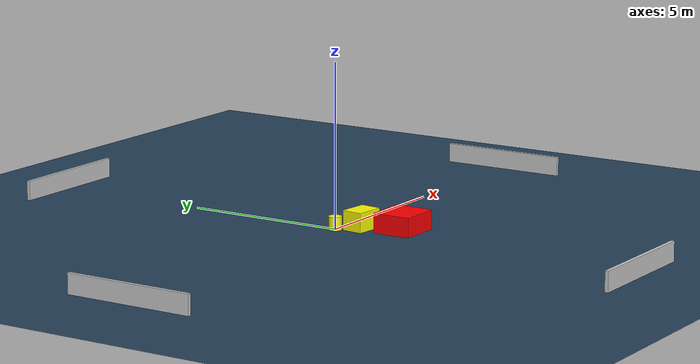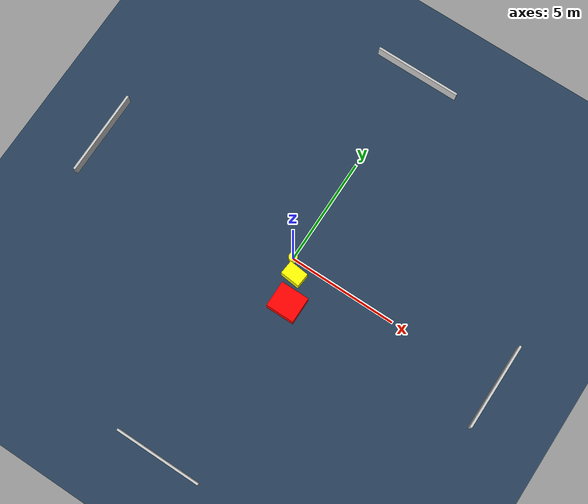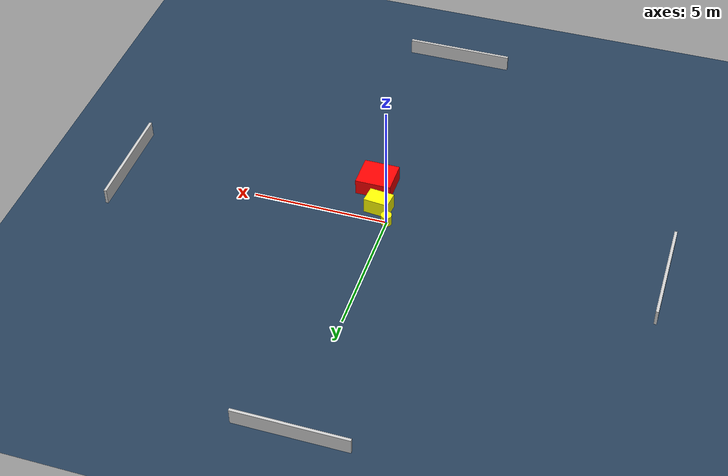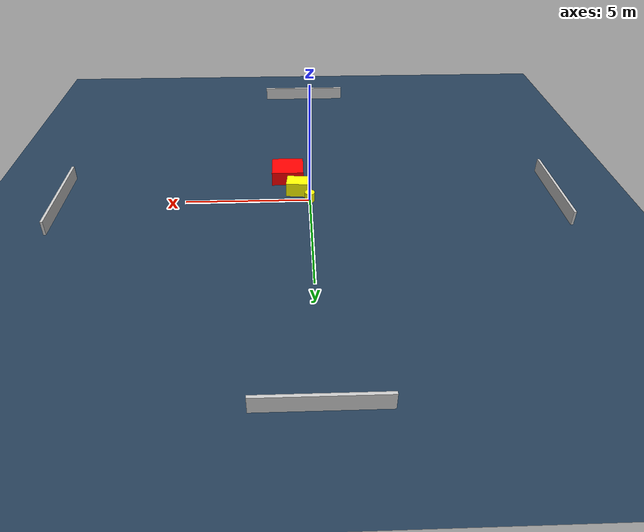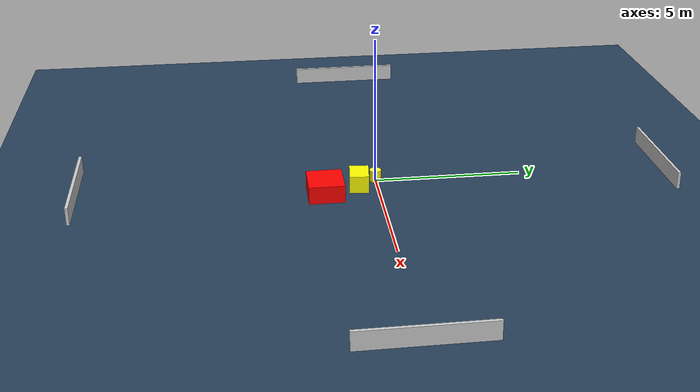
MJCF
<?xml version="1.0" ?>
<mujoco model="generated_environment">
  <option timestep="0.01" integrator="RK4" cone="elliptic"/>
  <default>
    <geom density="1"/>
  </default>
  <asset>
    <texture builtin="gradient" height="3072" name="skybox" rgb1="0.3 0.5 0.7" rgb2="0 0 0" type="skybox" width="512"/>
    <texture builtin="checker" height="300" name="groundplane" rgb1="0.2 0.3 0.4" rgb2="0.1 0.2 0.3" type="2d" width="300"/>
    <material name="groundplane" reflectance="0.2" texrepeat="5 5" texture="groundplane"/>
  </asset>
  <worldbody>
    <light dir="0 0 -1" directional="true" pos="0 0 1.5"/>
    <geom condim="3" friction="0.5 0.005 0.001" material="groundplane" name="floor" pos="0 0 0" size="0 0 0.05" type="plane"/>
    <body name="walls">
      <geom name="wall_1" condim="4" pos="-10.0 0.0 0.3" rgba="0.800000011920929 0.800000011920929 0.800000011920929 1.0" size="0.05 2.0 0.3" type="box"/>
      <geom name="wall_2" condim="4" pos="10.0 0.0 0.3" rgba="0.800000011920929 0.800000011920929 0.800000011920929 1.0" size="0.05 2.0 0.3" type="box"/>
      <geom name="wall_3" condim="4" pos="0.0 -10.0 0.3" rgba="0.800000011920929 0.800000011920929 0.800000011920929 1.0" size="2.0 0.05 0.3" type="box"/>
      <geom name="wall_4" condim="4" pos="0.0 10.0 0.3" rgba="0.800000011920929 0.800000011920929 0.800000011920929 1.0" size="2.0 0.05 0.3" type="box"/>
    </body>
    <body name="robot">
      <joint name="joint_x" type="slide" pos="0 0 0" axis="1 0 0"/>
      <joint name="joint_y" type="slide" pos="0 0 0" axis="0 1 0"/>
      <geom name="robot" type="cylinder" pos="0.0 0.0 0.2" size="0.2 0.2 0.0" mass="5.0" friction="1.0 0.005 0.0001" condim="4" rgba="1.0 1.0 0.0 1.0"/>
    </body>
    <body name="obstacle_1_movable">
      <geom name="obstacle_1_movable" condim="4" pos="0.4665858166551503 -0.6100476294085422 0.3" euler="0 0 354.30418581000475" friction="0.0 0.005 0.001" rgba="1.0 1.0 0.0 1.0" size="0.4568730655192337 0.321770489058821 0.3" type="box" mass="0.1"/>
      <joint type="free"/>
    </body>
    <body name="obstacle_2_static">
      <geom name="obstacle_2_static" condim="4" pos="0.8867679346879905 -1.7815527041726467 0.3" euler="0 0 89.98411184110168" friction="0.0 0.005 0.001" rgba="1.0 0.0 0.0 1.0" size="0.5977196711751864 0.6587523722460198 0.3" type="box"/>
    </body>
  </worldbody>
  <actuator>
    <motor name="actuator_x" joint="joint_x" gear="1" ctrlrange="-1 1"/>
    <motor name="actuator_y" joint="joint_y" gear="1" ctrlrange="-1 1"/>
  </actuator>
</mujoco>
